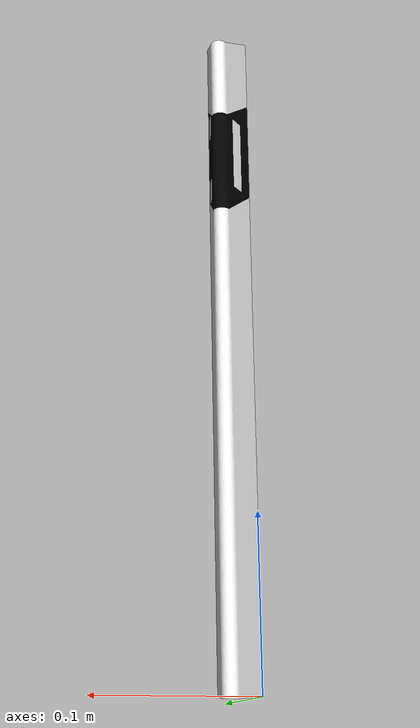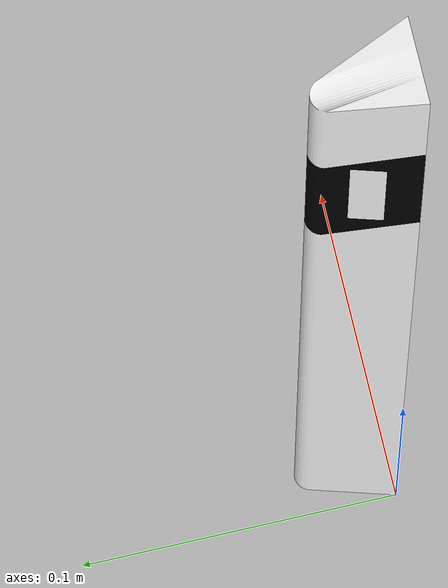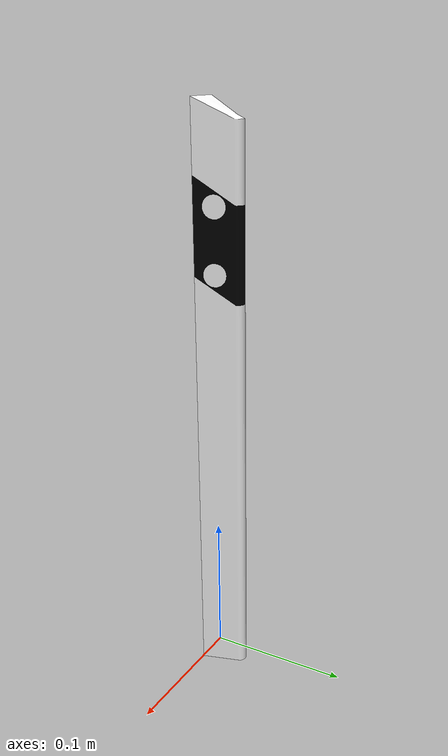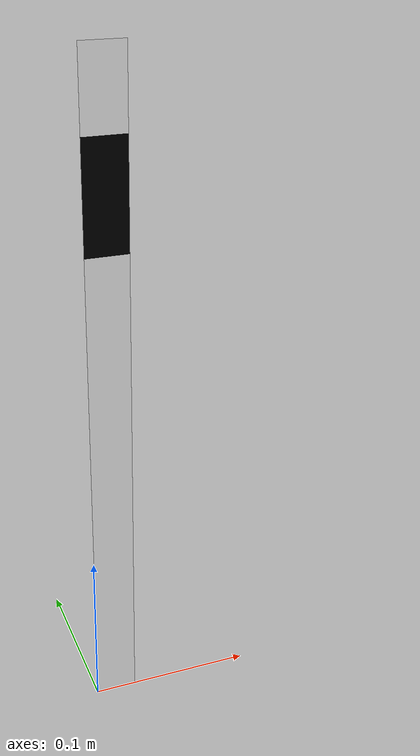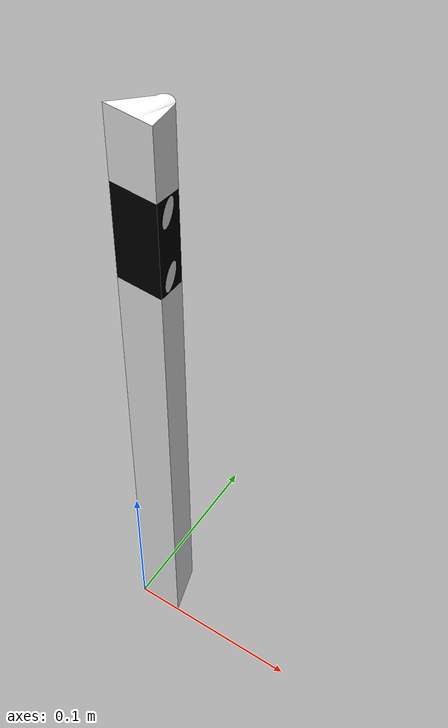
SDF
<?xml version='1.0'?>
<sdf version='1.6'>
  <model name='post'>
    <link name='link'>
      <pose frame=''>0 0 0 0 0 0</pose>
      <visual name='visual'>
        <pose frame=''>0 0 0 0 0 0</pose>
        <geometry>
          <mesh>
            <uri>model://post/meshes/model_adapted.dae</uri>
            <scale>0.25 0.25 0.25</scale>
          </mesh>
        </geometry>
        <cast_shadows>1</cast_shadows>
        <transparency>0</transparency>
      </visual>
      <collision name='collision'>
        <laser_retro>0</laser_retro>
        <max_contacts>10</max_contacts>
        <pose frame=''>0 0 0 0 -0 0</pose>
        <geometry>
          <mesh>
            <uri>model://post/meshes/model_adapted.dae</uri>
            <scale>0.25 0.25 0.25</scale>
          </mesh>
        </geometry>
      </collision>
    </link>
    <static>1</static>
    <allow_auto_disable>1</allow_auto_disable>
  </model>
</sdf>
